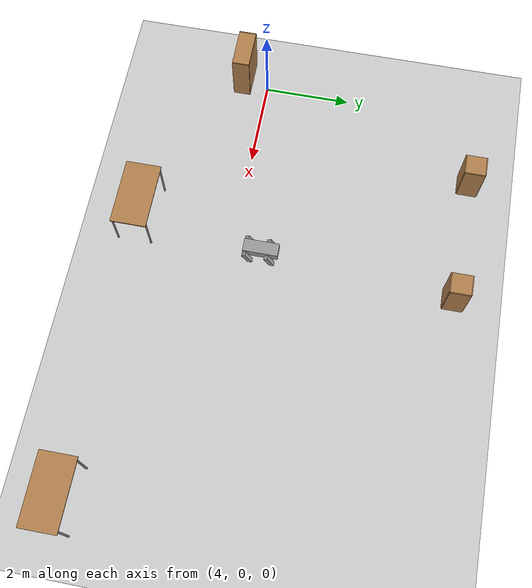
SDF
<sdf version="1.6">
 <world name="default">
  <model name="ground_plane">
   <static>1</static>
   <link name="link">
    <collision name="collision">
     <geometry><plane><normal>0 0 1</normal><size>100 100</size></plane></geometry>
     <surface>
      <contact><collide_bitmask>65535</collide_bitmask></contact>
      <friction><ode><mu>100</mu><mu2>50</mu2></ode></friction>
     </surface>
    </collision>
    <visual name="visual">
     <cast_shadows>0</cast_shadows>
     <geometry><plane><normal>0 0 1</normal><size>100 100</size></plane></geometry>
     <material>
      <script><uri>file://media/materials/scripts/gazebo.material</uri><name>Gazebo/Grey</name></script>
     </material>
    </visual>
   </link>
  </model>
  <model name="Dog_0_clone">
   <link name="link_3">
    <pose>0 0 0.155724 0 -0 0</pose>
    <inertial>
     <mass>1</mass>
     <inertia>
      <ixx>0.166667</ixx>
      <ixy>0</ixy>
      <ixz>0</ixz>
      <iyy>0.166667</iyy>
      <iyz>0</iyz>
      <izz>0.166667</izz>
     </inertia>
    </inertial>
    <visual name="visual">
     <geometry><box><size>0.3 0.8 0.2</size></box></geometry>
     <material>
      <lighting>1</lighting>
      <script><uri>file://media/materials/scripts/gazebo.material</uri><name>Gazebo/Grey</name></script>
      <shader type="pixel"><normal_map>__default__</normal_map></shader>
      <ambient>0.3 0.3 0.3 1</ambient>
      <diffuse>0.7 0.7 0.7 1</diffuse>
      <specular>0.01 0.01 0.01 1</specular>
      <emissive>0 0 0 1</emissive>
     </material>
    </visual>
    <collision name="collision">
     <geometry><box><size>0.3 0.8 0.2</size></box></geometry>
     <surface>
      <friction>
       <ode><mu>1</mu><mu2>1</mu2><fdir1>0 0 0</fdir1><slip1>0</slip1><slip2>0</slip2></ode>
       <torsional>
        <coefficient>1</coefficient>
        <patch_radius>0</patch_radius>
        <surface_radius>0</surface_radius>
        <use_patch_radius>1</use_patch_radius>
        <ode><slip>0</slip></ode>
       </torsional>
      </friction>
      <bounce><restitution_coefficient>0</restitution_coefficient><threshold>1e+06</threshold></bounce>
      <contact>
       <collide_without_contact>0</collide_without_contact>
       <collide_without_contact_bitmask>1</collide_without_contact_bitmask>
       <collide_bitmask>1</collide_bitmask>
       <ode>
        <soft_cfm>0</soft_cfm>
        <soft_erp>0.2</soft_erp>
        <kp>1e+13</kp>
        <kd>1</kd>
        <max_vel>0.01</max_vel>
        <min_depth>0</min_depth>
       </ode>
       <bullet>
        <split_impulse>1</split_impulse>
        <split_impulse_penetration_threshold>-0.01</split_impulse_penetration_threshold>
        <soft_cfm>0</soft_cfm>
        <soft_erp>0.2</soft_erp>
        <kp>1e+13</kp>
        <kd>1</kd>
       </bullet>
      </contact>
     </surface>
    </collision>
   </link>
   <link name="link_4_clone">
    <pose>-0.2 0.250498 -0.038931 2 -0 0</pose>
    <inertial>
     <mass>1</mass>
     <inertia>
      <ixx>0.166667</ixx>
      <ixy>0</ixy>
      <ixz>0</ixz>
      <iyy>0.166667</iyy>
      <iyz>0</iyz>
      <izz>0.166667</izz>
     </inertia>
    </inertial>
    <visual name="visual">
     <geometry><box><size>0.1 0.5 0.1</size></box></geometry>
     <material>
      <lighting>1</lighting>
      <script><uri>file://media/materials/scripts/gazebo.material</uri><name>Gazebo/Grey</name></script>
      <shader type="pixel"><normal_map>__default__</normal_map></shader>
      <ambient>0.3 0.3 0.3 1</ambient>
      <diffuse>0.7 0.7 0.7 1</diffuse>
      <specular>0.01 0.01 0.01 1</specular>
      <emissive>0 0 0 1</emissive>
     </material>
    </visual>
    <collision name="collision">
     <geometry><box><size>0.1 0.5 0.1</size></box></geometry>
     <surface>
      <friction>
       <ode><mu>1</mu><mu2>1</mu2><fdir1>0 0 0</fdir1><slip1>0</slip1><slip2>0</slip2></ode>
       <torsional>
        <coefficient>1</coefficient>
        <patch_radius>0</patch_radius>
        <surface_radius>0</surface_radius>
        <use_patch_radius>1</use_patch_radius>
        <ode><slip>0</slip></ode>
       </torsional>
      </friction>
      <bounce><restitution_coefficient>0</restitution_coefficient><threshold>1e+06</threshold></bounce>
      <contact>
       <collide_without_contact>0</collide_without_contact>
       <collide_without_contact_bitmask>1</collide_without_contact_bitmask>
       <collide_bitmask>1</collide_bitmask>
       <ode>
        <soft_cfm>0</soft_cfm>
        <soft_erp>0.2</soft_erp>
        <kp>1e+13</kp>
        <kd>1</kd>
        <max_vel>0.01</max_vel>
        <min_depth>0</min_depth>
       </ode>
       <bullet>
        <split_impulse>1</split_impulse>
        <split_impulse_penetration_threshold>-0.01</split_impulse_penetration_threshold>
        <soft_cfm>0</soft_cfm>
        <soft_erp>0.2</soft_erp>
        <kp>1e+13</kp>
        <kd>1</kd>
       </bullet>
      </contact>
     </surface>
    </collision>
   </link>
   <link name="link_4_clone_0">
    <pose>0.2 -0.250498 -0.038931 2 -0 0</pose>
    <inertial>
     <mass>1</mass>
     <inertia>
      <ixx>0.166667</ixx>
      <ixy>0</ixy>
      <ixz>0</ixz>
      <iyy>0.166667</iyy>
      <iyz>0</iyz>
      <izz>0.166667</izz>
     </inertia>
    </inertial>
    <visual name="visual">
     <geometry><box><size>0.1 0.5 0.1</size></box></geometry>
     <material>
      <lighting>1</lighting>
      <script><uri>file://media/materials/scripts/gazebo.material</uri><name>Gazebo/Grey</name></script>
      <shader type="pixel"><normal_map>__default__</normal_map></shader>
      <ambient>0.3 0.3 0.3 1</ambient>
      <diffuse>0.7 0.7 0.7 1</diffuse>
      <specular>0.01 0.01 0.01 1</specular>
      <emissive>0 0 0 1</emissive>
     </material>
    </visual>
    <collision name="collision">
     <geometry><box><size>0.1 0.5 0.1</size></box></geometry>
     <surface>
      <friction>
       <ode><mu>1</mu><mu2>1</mu2><fdir1>0 0 0</fdir1><slip1>0</slip1><slip2>0</slip2></ode>
       <torsional>
        <coefficient>1</coefficient>
        <patch_radius>0</patch_radius>
        <surface_radius>0</surface_radius>
        <use_patch_radius>1</use_patch_radius>
        <ode><slip>0</slip></ode>
       </torsional>
      </friction>
      <bounce><restitution_coefficient>0</restitution_coefficient><threshold>1e+06</threshold></bounce>
      <contact>
       <collide_without_contact>0</collide_without_contact>
       <collide_without_contact_bitmask>1</collide_without_contact_bitmask>
       <collide_bitmask>1</collide_bitmask>
       <ode>
        <soft_cfm>0</soft_cfm>
        <soft_erp>0.2</soft_erp>
        <kp>1e+13</kp>
        <kd>1</kd>
        <max_vel>0.01</max_vel>
        <min_depth>0</min_depth>
       </ode>
       <bullet>
        <split_impulse>1</split_impulse>
        <split_impulse_penetration_threshold>-0.01</split_impulse_penetration_threshold>
        <soft_cfm>0</soft_cfm>
        <soft_erp>0.2</soft_erp>
        <kp>1e+13</kp>
        <kd>1</kd>
       </bullet>
      </contact>
     </surface>
    </collision>
   </link>
   <link name="link_4_clone_1">
    <pose>-0.2 -0.250498 -0.038931 2 -0 0</pose>
    <inertial>
     <mass>1</mass>
     <inertia>
      <ixx>0.166667</ixx>
      <ixy>0</ixy>
      <ixz>0</ixz>
      <iyy>0.166667</iyy>
      <iyz>0</iyz>
      <izz>0.166667</izz>
     </inertia>
    </inertial>
    <visual name="visual">
     <geometry><box><size>0.1 0.5 0.1</size></box></geometry>
     <material>
      <lighting>1</lighting>
      <script><uri>file://media/materials/scripts/gazebo.material</uri><name>Gazebo/Grey</name></script>
      <shader type="pixel"><normal_map>__default__</normal_map></shader>
      <ambient>0.3 0.3 0.3 1</ambient>
      <diffuse>0.7 0.7 0.7 1</diffuse>
      <specular>0.01 0.01 0.01 1</specular>
      <emissive>0 0 0 1</emissive>
     </material>
    </visual>
    <collision name="collision">
     <geometry><box><size>0.1 0.5 0.1</size></box></geometry>
     <surface>
      <friction>
       <ode><mu>1</mu><mu2>1</mu2><fdir1>0 0 0</fdir1><slip1>0</slip1><slip2>0</slip2></ode>
       <torsional>
        <coefficient>1</coefficient>
        <patch_radius>0</patch_radius>
        <surface_radius>0</surface_radius>
        <use_patch_radius>1</use_patch_radius>
        <ode><slip>0</slip></ode>
       </torsional>
      </friction>
      <bounce><restitution_coefficient>0</restitution_coefficient><threshold>1e+06</threshold></bounce>
      <contact>
       <collide_without_contact>0</collide_without_contact>
       <collide_without_contact_bitmask>1</collide_without_contact_bitmask>
       <collide_bitmask>1</collide_bitmask>
       <ode>
        <soft_cfm>0</soft_cfm>
        <soft_erp>0.2</soft_erp>
        <kp>1e+13</kp>
        <kd>1</kd>
        <max_vel>0.01</max_vel>
        <min_depth>0</min_depth>
       </ode>
       <bullet>
        <split_impulse>1</split_impulse>
        <split_impulse_penetration_threshold>-0.01</split_impulse_penetration_threshold>
        <soft_cfm>0</soft_cfm>
        <soft_erp>0.2</soft_erp>
        <kp>1e+13</kp>
        <kd>1</kd>
       </bullet>
      </contact>
     </surface>
    </collision>
   </link>
   <link name="link_4_clone_1_clone">
    <pose>0.2 0.250498 -0.038931 2 -0 0</pose>
    <inertial>
     <mass>1</mass>
     <inertia>
      <ixx>0.166667</ixx>
      <ixy>0</ixy>
      <ixz>0</ixz>
      <iyy>0.166667</iyy>
      <iyz>0</iyz>
      <izz>0.166667</izz>
     </inertia>
    </inertial>
    <visual name="visual">
     <geometry><box><size>0.1 0.5 0.1</size></box></geometry>
     <material>
      <lighting>1</lighting>
      <script><uri>file://media/materials/scripts/gazebo.material</uri><name>Gazebo/Grey</name></script>
      <shader type="pixel"><normal_map>__default__</normal_map></shader>
      <ambient>0.3 0.3 0.3 1</ambient>
      <diffuse>0.7 0.7 0.7 1</diffuse>
      <specular>0.01 0.01 0.01 1</specular>
      <emissive>0 0 0 1</emissive>
     </material>
    </visual>
    <collision name="collision">
     <geometry><box><size>0.1 0.5 0.1</size></box></geometry>
     <surface>
      <friction>
       <ode><mu>1</mu><mu2>1</mu2><fdir1>0 0 0</fdir1><slip1>0</slip1><slip2>0</slip2></ode>
       <torsional>
        <coefficient>1</coefficient>
        <patch_radius>0</patch_radius>
        <surface_radius>0</surface_radius>
        <use_patch_radius>1</use_patch_radius>
        <ode><slip>0</slip></ode>
       </torsional>
      </friction>
      <bounce><restitution_coefficient>0</restitution_coefficient><threshold>1e+06</threshold></bounce>
      <contact>
       <collide_without_contact>0</collide_without_contact>
       <collide_without_contact_bitmask>1</collide_without_contact_bitmask>
       <collide_bitmask>1</collide_bitmask>
       <ode>
        <soft_cfm>0</soft_cfm>
        <soft_erp>0.2</soft_erp>
        <kp>1e+13</kp>
        <kd>1</kd>
        <max_vel>0.01</max_vel>
        <min_depth>0</min_depth>
       </ode>
       <bullet>
        <split_impulse>1</split_impulse>
        <split_impulse_penetration_threshold>-0.01</split_impulse_penetration_threshold>
        <soft_cfm>0</soft_cfm>
        <soft_erp>0.2</soft_erp>
        <kp>1e+13</kp>
        <kd>1</kd>
       </bullet>
      </contact>
     </surface>
    </collision>
   </link>
   <joint name="link_3_JOINT_1" type="revolute">
    <parent>link_3</parent>
    <child>link_4_clone_0</child>
    <axis>
     <xyz>1 0 0</xyz>
     <use_parent_model_frame>0</use_parent_model_frame>
     <limit>
      <lower>-1.79769e+308</lower>
      <upper>1.79769e+308</upper>
      <effort>-1</effort>
      <velocity>-1</velocity>
     </limit>
     <dynamics>
      <spring_reference>0</spring_reference>
      <spring_stiffness>0</spring_stiffness>
      <damping>0</damping>
     </dynamics>
    </axis>
    <physics>
     <ode><limit><cfm>0</cfm><erp>0.2</erp></limit><suspension><cfm>0</cfm><erp>0.2</erp></suspension></ode>
    </physics>
   </joint>
   <joint name="link_3_JOINT_3" type="revolute">
    <parent>link_3</parent>
    <child>link_4_clone_1_clone</child>
    <axis>
     <xyz>1 0 0</xyz>
     <use_parent_model_frame>0</use_parent_model_frame>
     <limit>
      <lower>-1.79769e+308</lower>
      <upper>1.79769e+308</upper>
      <effort>-1</effort>
      <velocity>-1</velocity>
     </limit>
     <dynamics>
      <spring_reference>0</spring_reference>
      <spring_stiffness>0</spring_stiffness>
      <damping>0</damping>
     </dynamics>
    </axis>
    <physics>
     <ode><limit><cfm>0</cfm><erp>0.2</erp></limit><suspension><cfm>0</cfm><erp>0.2</erp></suspension></ode>
    </physics>
   </joint>
   <joint name="link_3_JOINT_4" type="revolute">
    <parent>link_3</parent>
    <child>link_4_clone</child>
    <axis>
     <xyz>1 0 0</xyz>
     <use_parent_model_frame>0</use_parent_model_frame>
     <limit>
      <lower>-1.79769e+308</lower>
      <upper>1.79769e+308</upper>
      <effort>-1</effort>
      <velocity>-1</velocity>
     </limit>
     <dynamics>
      <spring_reference>0</spring_reference>
      <spring_stiffness>0</spring_stiffness>
      <damping>0</damping>
     </dynamics>
    </axis>
    <physics>
     <ode><limit><cfm>0</cfm><erp>0.2</erp></limit><suspension><cfm>0</cfm><erp>0.2</erp></suspension></ode>
    </physics>
   </joint>
   <joint name="link_3_JOINT_5" type="revolute">
    <parent>link_3</parent>
    <child>link_4_clone_1</child>
    <axis>
     <xyz>1 0 0</xyz>
     <use_parent_model_frame>0</use_parent_model_frame>
     <limit>
      <lower>-1.79769e+308</lower>
      <upper>1.79769e+308</upper>
      <effort>-1</effort>
      <velocity>-1</velocity>
     </limit>
     <dynamics>
      <spring_reference>0</spring_reference>
      <spring_stiffness>0</spring_stiffness>
      <damping>0</damping>
     </dynamics>
    </axis>
    <physics>
     <ode><limit><cfm>0</cfm><erp>0.2</erp></limit><suspension><cfm>0</cfm><erp>0.2</erp></suspension></ode>
    </physics>
   </joint>
   <static>0</static>
   <pose>8.32153 0.673191 0.088927 0 1e-06 0.001678</pose>
  </model>
  <model name="table">
   <static>1</static>
   <link name="link">
    <collision name="surface">
     <pose>0 0 1 0 -0 0</pose>
     <geometry><box><size>1.5 0.8 0.03</size></box></geometry>
     <surface><friction><ode><mu>0.6</mu><mu2>0.6</mu2></ode></friction></surface>
    </collision>
    <visual name="visual1">
     <pose>0 0 1 0 -0 0</pose>
     <geometry><box><size>1.5 0.8 0.03</size></box></geometry>
     <material>
      <script><uri>file://media/materials/scripts/gazebo.material</uri><name>Gazebo/Wood</name></script>
     </material>
    </visual>
    <collision name="front_left_leg">
     <pose>0.68 0.38 0.5 0 -0 0</pose>
     <geometry><cylinder><radius>0.02</radius><length>1</length></cylinder></geometry>
    </collision>
    <visual name="front_left_leg">
     <pose>0.68 0.38 0.5 0 -0 0</pose>
     <geometry><cylinder><radius>0.02</radius><length>1</length></cylinder></geometry>
     <material>
      <script><uri>file://media/materials/scripts/gazebo.material</uri><name>Gazebo/Grey</name></script>
     </material>
    </visual>
    <collision name="front_right_leg">
     <pose>0.68 -0.38 0.5 0 -0 0</pose>
     <geometry><cylinder><radius>0.02</radius><length>1</length></cylinder></geometry>
    </collision>
    <visual name="front_right_leg">
     <pose>0.68 -0.38 0.5 0 -0 0</pose>
     <geometry><cylinder><radius>0.02</radius><length>1</length></cylinder></geometry>
     <material>
      <script><uri>file://media/materials/scripts/gazebo.material</uri><name>Gazebo/Grey</name></script>
     </material>
    </visual>
    <collision name="back_right_leg">
     <pose>-0.68 -0.38 0.5 0 -0 0</pose>
     <geometry><cylinder><radius>0.02</radius><length>1</length></cylinder></geometry>
    </collision>
    <visual name="back_right_leg">
     <pose>-0.68 -0.38 0.5 0 -0 0</pose>
     <geometry><cylinder><radius>0.02</radius><length>1</length></cylinder></geometry>
     <material>
      <script><uri>file://media/materials/scripts/gazebo.material</uri><name>Gazebo/Grey</name></script>
     </material>
    </visual>
    <collision name="back_left_leg">
     <pose>-0.68 0.38 0.5 0 -0 0</pose>
     <geometry><cylinder><radius>0.02</radius><length>1</length></cylinder></geometry>
    </collision>
    <visual name="back_left_leg">
     <pose>-0.68 0.38 0.5 0 -0 0</pose>
     <geometry><cylinder><radius>0.02</radius><length>1</length></cylinder></geometry>
     <material>
      <script><uri>file://media/materials/scripts/gazebo.material</uri><name>Gazebo/Grey</name></script>
     </material>
    </visual>
   </link>
   <pose>7.84129 -2.22113 0 0 -0 0</pose>
  </model>
  <model name="table_0">
   <static>1</static>
   <link name="link">
    <collision name="surface">
     <pose>0 0 1 0 -0 0</pose>
     <geometry><box><size>1.5 0.8 0.03</size></box></geometry>
     <surface><friction><ode><mu>0.6</mu><mu2>0.6</mu2></ode></friction></surface>
    </collision>
    <visual name="visual1">
     <pose>0 0 1 0 -0 0</pose>
     <geometry><box><size>1.5 0.8 0.03</size></box></geometry>
     <material>
      <script><uri>file://media/materials/scripts/gazebo.material</uri><name>Gazebo/Wood</name></script>
     </material>
    </visual>
    <collision name="front_left_leg">
     <pose>0.68 0.38 0.5 0 -0 0</pose>
     <geometry><cylinder><radius>0.02</radius><length>1</length></cylinder></geometry>
    </collision>
    <visual name="front_left_leg">
     <pose>0.68 0.38 0.5 0 -0 0</pose>
     <geometry><cylinder><radius>0.02</radius><length>1</length></cylinder></geometry>
     <material>
      <script><uri>file://media/materials/scripts/gazebo.material</uri><name>Gazebo/Grey</name></script>
     </material>
    </visual>
    <collision name="front_right_leg">
     <pose>0.68 -0.38 0.5 0 -0 0</pose>
     <geometry><cylinder><radius>0.02</radius><length>1</length></cylinder></geometry>
    </collision>
    <visual name="front_right_leg">
     <pose>0.68 -0.38 0.5 0 -0 0</pose>
     <geometry><cylinder><radius>0.02</radius><length>1</length></cylinder></geometry>
     <material>
      <script><uri>file://media/materials/scripts/gazebo.material</uri><name>Gazebo/Grey</name></script>
     </material>
    </visual>
    <collision name="back_right_leg">
     <pose>-0.68 -0.38 0.5 0 -0 0</pose>
     <geometry><cylinder><radius>0.02</radius><length>1</length></cylinder></geometry>
    </collision>
    <visual name="back_right_leg">
     <pose>-0.68 -0.38 0.5 0 -0 0</pose>
     <geometry><cylinder><radius>0.02</radius><length>1</length></cylinder></geometry>
     <material>
      <script><uri>file://media/materials/scripts/gazebo.material</uri><name>Gazebo/Grey</name></script>
     </material>
    </visual>
    <collision name="back_left_leg">
     <pose>-0.68 0.38 0.5 0 -0 0</pose>
     <geometry><cylinder><radius>0.02</radius><length>1</length></cylinder></geometry>
    </collision>
    <visual name="back_left_leg">
     <pose>-0.68 0.38 0.5 0 -0 0</pose>
     <geometry><cylinder><radius>0.02</radius><length>1</length></cylinder></geometry>
     <material>
      <script><uri>file://media/materials/scripts/gazebo.material</uri><name>Gazebo/Grey</name></script>
     </material>
    </visual>
   </link>
   <pose>14.3802 -2.32504 0 0 -0 0</pose>
  </model>
  <model name="bookshelf">
   <static>1</static>
   <link name="link">
    <inertial><mass>1</mass></inertial>
    <collision name="back">
     <pose>0 0.005 0.6 0 -0 0</pose>
     <geometry><box><size>0.9 0.01 1.2</size></box></geometry>
    </collision>
    <visual name="visual1">
     <pose>0 0.005 0.6 0 -0 0</pose>
     <geometry><box><size>0.9 0.01 1.2</size></box></geometry>
     <material>
      <script><uri>file://media/materials/scripts/gazebo.material</uri><name>Gazebo/Wood</name></script>
     </material>
    </visual>
    <collision name="left_side">
     <pose>0.45 -0.195 0.6 0 -0 0</pose>
     <geometry><box><size>0.02 0.4 1.2</size></box></geometry>
    </collision>
    <visual name="visual2">
     <pose>0.45 -0.195 0.6 0 -0 0</pose>
     <geometry><box><size>0.02 0.4 1.2</size></box></geometry>
     <material>
      <script><uri>file://media/materials/scripts/gazebo.material</uri><name>Gazebo/Wood</name></script>
     </material>
    </visual>
    <collision name="right_side">
     <pose>-0.45 -0.195 0.6 0 -0 0</pose>
     <geometry><box><size>0.02 0.4 1.2</size></box></geometry>
    </collision>
    <visual name="visual3">
     <pose>-0.45 -0.195 0.6 0 -0 0</pose>
     <geometry><box><size>0.02 0.4 1.2</size></box></geometry>
     <material>
      <script><uri>file://media/materials/scripts/gazebo.material</uri><name>Gazebo/Wood</name></script>
     </material>
    </visual>
    <collision name="bottom">
     <pose>0 -0.195 0.03 0 -0 0</pose>
     <geometry><box><size>0.88 0.4 0.06</size></box></geometry>
    </collision>
    <visual name="visual4">
     <pose>0 -0.195 0.03 0 -0 0</pose>
     <geometry><box><size>0.88 0.4 0.06</size></box></geometry>
     <material>
      <script><uri>file://media/materials/scripts/gazebo.material</uri><name>Gazebo/Wood</name></script>
     </material>
    </visual>
    <collision name="top">
     <pose>0 -0.195 1.19 0 -0 0</pose>
     <geometry><box><size>0.88 0.4 0.02</size></box></geometry>
    </collision>
    <visual name="visual5">
     <pose>0 -0.195 1.19 0 -0 0</pose>
     <geometry><box><size>0.88 0.4 0.02</size></box></geometry>
     <material>
      <script><uri>file://media/materials/scripts/gazebo.material</uri><name>Gazebo/Wood</name></script>
     </material>
    </visual>
    <collision name="low_shelf">
     <pose>0 -0.195 0.43 0 -0 0</pose>
     <geometry><box><size>0.88 0.4 0.02</size></box></geometry>
    </collision>
    <visual name="visual6">
     <pose>0 -0.195 0.43 0 -0 0</pose>
     <geometry><box><size>0.88 0.4 0.02</size></box></geometry>
     <material>
      <script><uri>file://media/materials/scripts/gazebo.material</uri><name>Gazebo/Wood</name></script>
     </material>
    </visual>
    <collision name="high_shelf">
     <pose>0 -0.195 0.8 0 -0 0</pose>
     <geometry><box><size>0.88 0.4 0.02</size></box></geometry>
    </collision>
    <visual name="visual7">
     <pose>0 -0.195 0.8 0 -0 0</pose>
     <geometry><box><size>0.88 0.4 0.02</size></box></geometry>
     <material>
      <script><uri>file://media/materials/scripts/gazebo.material</uri><name>Gazebo/Wood</name></script>
     </material>
    </visual>
   </link>
   <pose>3.74689 -0.396871 0 0 -0 0</pose>
  </model>
  <model name="cabinet">
   <static>1</static>
   <link name="cabinet_bottom_plate">
    <inertial>
     <pose>0 0 -1 0 -0 0</pose>
     <inertia><ixx>2.05</ixx><ixy>0</ixy><ixz>0</ixz><iyy>2.05</iyy><iyz>0</iyz><izz>2.05</izz></inertia>
     <mass>25</mass>
    </inertial>
    <collision name="cabinet_bottom_plate_geom">
     <pose>0 0 0.01 0 -0 0</pose>
     <geometry><box><size>0.45 0.45 0.02</size></box></geometry>
    </collision>
    <visual name="cabinet_bottom_plate_geom_visual">
     <pose>0 0 0.01 0 -0 0</pose>
     <geometry><box><size>0.45 0.45 0.02</size></box></geometry>
     <material>
      <script><uri>file://media/materials/scripts/gazebo.material</uri><name>Gazebo/Wood</name></script>
     </material>
    </visual>
    <collision name="cabinet_bottom_plate_geom_cabinet_back_plate">
     <pose>0.235 0 0.51 0 -0 0</pose>
     <geometry><box><size>0.02 0.45 1.02</size></box></geometry>
    </collision>
    <visual name="cabinet_bottom_plate_geom_cabinet_back_plate_visual">
     <pose>0.235 0 0.51 0 -0 0</pose>
     <geometry><box><size>0.02 0.45 1.02</size></box></geometry>
     <material>
      <script><uri>file://media/materials/scripts/gazebo.material</uri><name>Gazebo/Wood</name></script>
     </material>
    </visual>
    <collision name="cabinet_bottom_plate_geom_cabinet_left_plate">
     <pose>0 0.235 0.51 0 -0 0</pose>
     <geometry><box><size>0.45 0.02 1.02</size></box></geometry>
    </collision>
    <visual name="cabinet_bottom_plate_geom_cabinet_left_plate_visual">
     <pose>0 0.235 0.51 0 -0 0</pose>
     <geometry><box><size>0.45 0.02 1.02</size></box></geometry>
     <material>
      <script><uri>file://media/materials/scripts/gazebo.material</uri><name>Gazebo/Wood</name></script>
     </material>
    </visual>
    <collision name="cabinet_bottom_plate_geom_cabinet_middle_plate">
     <pose>0 0 0.51 0 -0 0</pose>
     <geometry><box><size>0.45 0.45 0.02</size></box></geometry>
    </collision>
    <visual name="cabinet_bottom_plate_geom_cabinet_middle_plate_visual">
     <pose>0 0 0.51 0 -0 0</pose>
     <geometry><box><size>0.45 0.45 0.02</size></box></geometry>
     <material>
      <script><uri>file://media/materials/scripts/gazebo.material</uri><name>Gazebo/Wood</name></script>
     </material>
    </visual>
    <collision name="cabinet_bottom_plate_geom_cabinet_right_plate">
     <pose>0 -0.235 0.51 0 -0 0</pose>
     <geometry><box><size>0.45 0.02 1.02</size></box></geometry>
    </collision>
    <visual name="cabinet_bottom_plate_geom_cabinet_right_plate_visual">
     <pose>0 -0.235 0.51 0 -0 0</pose>
     <geometry><box><size>0.45 0.02 1.02</size></box></geometry>
     <material>
      <script><uri>file://media/materials/scripts/gazebo.material</uri><name>Gazebo/Wood</name></script>
     </material>
    </visual>
    <collision name="cabinet_bottom_plate_geom_cabinet_top_plate">
     <pose>0 0 1.01 0 -0 0</pose>
     <geometry><box><size>0.45 0.45 0.02</size></box></geometry>
    </collision>
    <visual name="cabinet_bottom_plate_geom_cabinet_top_plate_visual">
     <pose>0 0 1.01 0 -0 0</pose>
     <geometry><box><size>0.45 0.45 0.02</size></box></geometry>
     <material>
      <script><uri>file://media/materials/scripts/gazebo.material</uri><name>Gazebo/Wood</name></script>
     </material>
    </visual>
   </link>
   <pose>5.7641 5.09453 0 0 -0 0</pose>
  </model>
  <model name="cabinet_0">
   <static>1</static>
   <link name="cabinet_bottom_plate">
    <inertial>
     <pose>0 0 -1 0 -0 0</pose>
     <inertia><ixx>2.05</ixx><ixy>0</ixy><ixz>0</ixz><iyy>2.05</iyy><iyz>0</iyz><izz>2.05</izz></inertia>
     <mass>25</mass>
    </inertial>
    <collision name="cabinet_bottom_plate_geom">
     <pose>0 0 0.01 0 -0 0</pose>
     <geometry><box><size>0.45 0.45 0.02</size></box></geometry>
    </collision>
    <visual name="cabinet_bottom_plate_geom_visual">
     <pose>0 0 0.01 0 -0 0</pose>
     <geometry><box><size>0.45 0.45 0.02</size></box></geometry>
     <material>
      <script><uri>file://media/materials/scripts/gazebo.material</uri><name>Gazebo/Wood</name></script>
     </material>
    </visual>
    <collision name="cabinet_bottom_plate_geom_cabinet_back_plate">
     <pose>0.235 0 0.51 0 -0 0</pose>
     <geometry><box><size>0.02 0.45 1.02</size></box></geometry>
    </collision>
    <visual name="cabinet_bottom_plate_geom_cabinet_back_plate_visual">
     <pose>0.235 0 0.51 0 -0 0</pose>
     <geometry><box><size>0.02 0.45 1.02</size></box></geometry>
     <material>
      <script><uri>file://media/materials/scripts/gazebo.material</uri><name>Gazebo/Wood</name></script>
     </material>
    </visual>
    <collision name="cabinet_bottom_plate_geom_cabinet_left_plate">
     <pose>0 0.235 0.51 0 -0 0</pose>
     <geometry><box><size>0.45 0.02 1.02</size></box></geometry>
    </collision>
    <visual name="cabinet_bottom_plate_geom_cabinet_left_plate_visual">
     <pose>0 0.235 0.51 0 -0 0</pose>
     <geometry><box><size>0.45 0.02 1.02</size></box></geometry>
     <material>
      <script><uri>file://media/materials/scripts/gazebo.material</uri><name>Gazebo/Wood</name></script>
     </material>
    </visual>
    <collision name="cabinet_bottom_plate_geom_cabinet_middle_plate">
     <pose>0 0 0.51 0 -0 0</pose>
     <geometry><box><size>0.45 0.45 0.02</size></box></geometry>
    </collision>
    <visual name="cabinet_bottom_plate_geom_cabinet_middle_plate_visual">
     <pose>0 0 0.51 0 -0 0</pose>
     <geometry><box><size>0.45 0.45 0.02</size></box></geometry>
     <material>
      <script><uri>file://media/materials/scripts/gazebo.material</uri><name>Gazebo/Wood</name></script>
     </material>
    </visual>
    <collision name="cabinet_bottom_plate_geom_cabinet_right_plate">
     <pose>0 -0.235 0.51 0 -0 0</pose>
     <geometry><box><size>0.45 0.02 1.02</size></box></geometry>
    </collision>
    <visual name="cabinet_bottom_plate_geom_cabinet_right_plate_visual">
     <pose>0 -0.235 0.51 0 -0 0</pose>
     <geometry><box><size>0.45 0.02 1.02</size></box></geometry>
     <material>
      <script><uri>file://media/materials/scripts/gazebo.material</uri><name>Gazebo/Wood</name></script>
     </material>
    </visual>
    <collision name="cabinet_bottom_plate_geom_cabinet_top_plate">
     <pose>0 0 1.01 0 -0 0</pose>
     <geometry><box><size>0.45 0.45 0.02</size></box></geometry>
    </collision>
    <visual name="cabinet_bottom_plate_geom_cabinet_top_plate_visual">
     <pose>0 0 1.01 0 -0 0</pose>
     <geometry><box><size>0.45 0.45 0.02</size></box></geometry>
     <material>
      <script><uri>file://media/materials/scripts/gazebo.material</uri><name>Gazebo/Wood</name></script>
     </material>
    </visual>
   </link>
   <pose>8.66047 5.06326 0 0 -0 0</pose>
  </model>
 </world>
</sdf>
